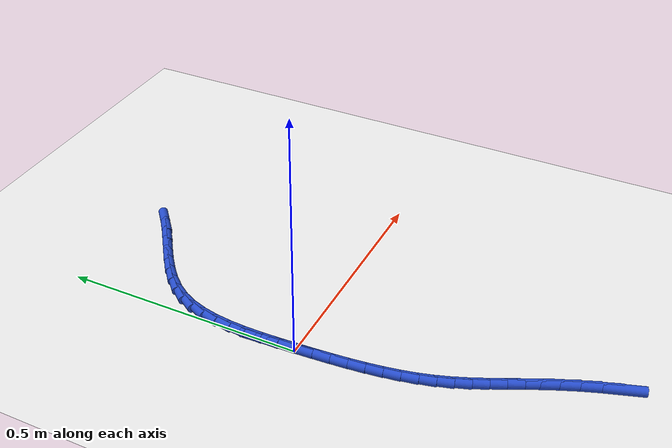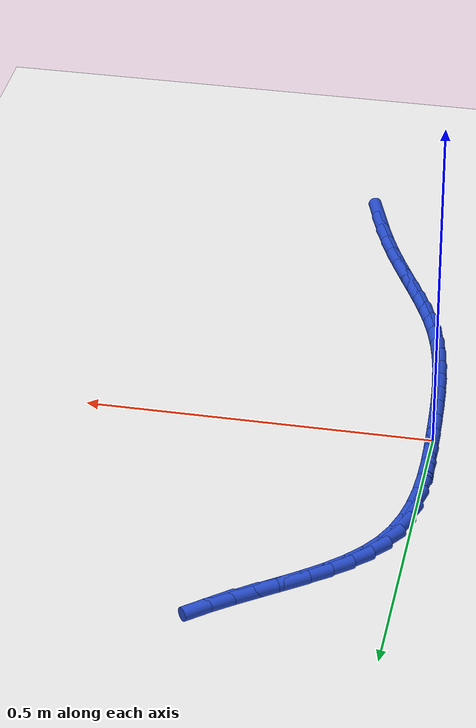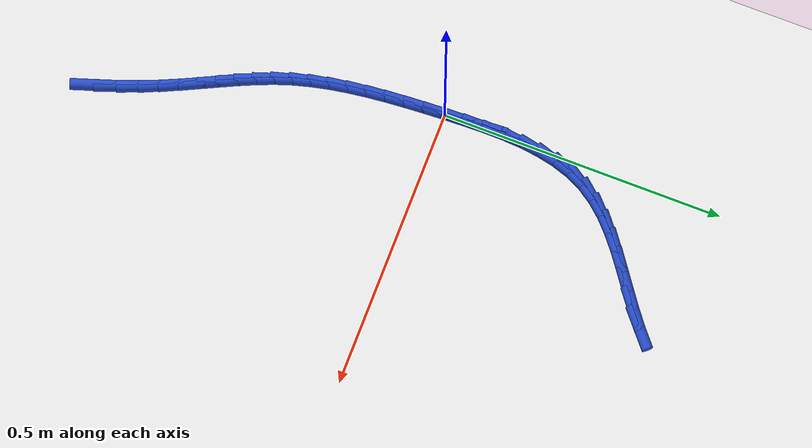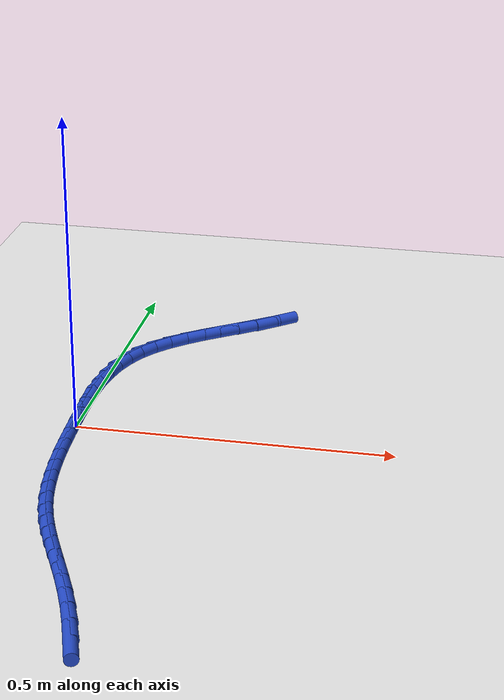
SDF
<sdf version="1.6">
 <world name="default">
  <model name="ground_plane">
   <static>1</static>
   <link name="link">
    <collision name="collision">
     <geometry><plane><normal>0 0 1</normal><size>100 100</size></plane></geometry>
     <surface><friction><ode><mu>100</mu><mu2>50</mu2></ode></friction></surface>
    </collision>
    <visual name="visual">
     <cast_shadows>0</cast_shadows>
     <geometry><plane><normal>0 0 1</normal><size>100 100</size></plane></geometry>
     <material>
      <script><uri>file://media/materials/scripts/gazebo.material</uri><name>Gazebo/WhiteGlow</name></script>
     </material>
    </visual>
   </link>
  </model>
  <model name="line">
   <link name="link_0">
    <pose>6.071532165918825e-18 -2.0816681711721685e-17 0.01 0 1.57 -1.5283965037339577</pose>
    <collision name="collision">
     <geometry><cylinder><radius>0.01</radius><length>0.08</length></cylinder></geometry>
    </collision>
    <visual name="visual">
     <material>
      <script><name>Gazebo/Blue</name><uri>file://media/materials/scripts/gazebo.material</uri></script>
     </material>
     <geometry><cylinder><radius>0.01</radius><length>0.08</length></cylinder></geometry>
    </visual>
   </link>
   <link name="link_1">
    <pose>-0.001498879464508566 0.03532989167594646 0.01 0 1.57 -1.5470402116652142</pose>
    <collision name="collision">
     <geometry><cylinder><radius>0.01</radius><length>0.08</length></cylinder></geometry>
    </collision>
    <visual name="visual">
     <material>
      <script><name>Gazebo/Blue</name><uri>file://media/materials/scripts/gazebo.material</uri></script>
     </material>
     <geometry><cylinder><radius>0.01</radius><length>0.08</length></cylinder></geometry>
    </visual>
   </link>
   <link name="link_2">
    <pose>-0.0023387738931622644 0.07067811335036579 0.01 0 1.57 1.5620465766555596</pose>
    <collision name="collision">
     <geometry><cylinder><radius>0.01</radius><length>0.08</length></cylinder></geometry>
    </collision>
    <visual name="visual">
     <material>
      <script><name>Gazebo/Blue</name><uri>file://media/materials/scripts/gazebo.material</uri></script>
     </material>
     <geometry><cylinder><radius>0.01</radius><length>0.08</length></cylinder></geometry>
    </visual>
   </link>
   <link name="link_3">
    <pose>-0.0020322944470748576 0.10570444210294236 0.01 0 1.57 1.514395082861115</pose>
    <collision name="collision">
     <geometry><cylinder><radius>0.01</radius><length>0.08</length></cylinder></geometry>
    </collision>
    <visual name="visual">
     <material>
      <script><name>Gazebo/Blue</name><uri>file://media/materials/scripts/gazebo.material</uri></script>
     </material>
     <geometry><cylinder><radius>0.01</radius><length>0.08</length></cylinder></geometry>
    </visual>
   </link>
   <link name="link_4">
    <pose>-9.205228736011185e-05 0.14006865501336038 0.01 0 1.57 1.4496548437023833</pose>
    <collision name="collision">
     <geometry><cylinder><radius>0.01</radius><length>0.08</length></cylinder></geometry>
    </collision>
    <visual name="visual">
     <material>
      <script><name>Gazebo/Blue</name><uri>file://media/materials/scripts/gazebo.material</uri></script>
     </material>
     <geometry><cylinder><radius>0.01</radius><length>0.08</length></cylinder></geometry>
    </visual>
   </link>
   <link name="link_5">
    <pose>0.003969341424868209 0.17343052916130416 0.01 0 1.57 1.3654235661168286</pose>
    <collision name="collision">
     <geometry><cylinder><radius>0.01</radius><length>0.08</length></cylinder></geometry>
    </collision>
    <visual name="visual">
     <material>
      <script><name>Gazebo/Blue</name><uri>file://media/materials/scripts/gazebo.material</uri></script>
     </material>
     <geometry><cylinder><radius>0.01</radius><length>0.08</length></cylinder></geometry>
    </visual>
   </link>
   <link name="link_6">
    <pose>0.010639275528496344 0.20544984162645802 0.01 0 1.57 1.259354841588835</pose>
    <collision name="collision">
     <geometry><cylinder><radius>0.01</radius><length>0.08</length></cylinder></geometry>
    </collision>
    <visual name="visual">
     <material>
      <script><name>Gazebo/Blue</name><uri>file://media/materials/scripts/gazebo.material</uri></script>
     </material>
     <geometry><cylinder><radius>0.01</radius><length>0.08</length></cylinder></geometry>
    </visual>
   </link>
   <link name="link_7">
    <pose>0.020405138862410514 0.23578636948850618 0.01 0 1.57 1.130226139631336</pose>
    <collision name="collision">
     <geometry><cylinder><radius>0.01</radius><length>0.08</length></cylinder></geometry>
    </collision>
    <visual name="visual">
     <material>
      <script><name>Gazebo/Blue</name><uri>file://media/materials/scripts/gazebo.material</uri></script>
     </material>
     <geometry><cylinder><radius>0.01</radius><length>0.08</length></cylinder></geometry>
    </visual>
   </link>
   <link name="link_8">
    <pose>0.03375432026549696 0.26409988982713295 0.01 0 1.57 0.9833878627278883</pose>
    <collision name="collision">
     <geometry><cylinder><radius>0.01</radius><length>0.08</length></cylinder></geometry>
    </collision>
    <visual name="visual">
     <material>
      <script><name>Gazebo/Blue</name><uri>file://media/materials/scripts/gazebo.material</uri></script>
     </material>
     <geometry><cylinder><radius>0.01</radius><length>0.08</length></cylinder></geometry>
    </visual>
   </link>
   <link name="link_9">
    <pose>0.051075435489808696 0.290115038766558 0.01 0 1.57 0.852496347622651</pose>
    <collision name="collision">
     <geometry><cylinder><radius>0.01</radius><length>0.08</length></cylinder></geometry>
    </collision>
    <visual name="visual">
     <material>
      <script><name>Gazebo/Blue</name><uri>file://media/materials/scripts/gazebo.material</uri></script>
     </material>
     <geometry><cylinder><radius>0.01</radius><length>0.08</length></cylinder></geometry>
    </visual>
   </link>
   <link name="link_10">
    <pose>0.07199954562878354 0.3140538983741864 0.01 0 1.57 0.7530468306794879</pose>
    <collision name="collision">
     <geometry><cylinder><radius>0.01</radius><length>0.08</length></cylinder></geometry>
    </collision>
    <visual name="visual">
     <material>
      <script><name>Gazebo/Blue</name><uri>file://media/materials/scripts/gazebo.material</uri></script>
     </material>
     <geometry><cylinder><radius>0.01</radius><length>0.08</length></cylinder></geometry>
    </visual>
   </link>
   <link name="link_11">
    <pose>0.09580708123976286 0.3363687911835788 0.01 0 1.57 0.6833430598227593</pose>
    <collision name="collision">
     <geometry><cylinder><radius>0.01</radius><length>0.08</length></cylinder></geometry>
    </collision>
    <visual name="visual">
     <material>
      <script><name>Gazebo/Blue</name><uri>file://media/materials/scripts/gazebo.material</uri></script>
     </material>
     <geometry><cylinder><radius>0.01</radius><length>0.08</length></cylinder></geometry>
    </visual>
   </link>
   <link name="link_12">
    <pose>0.12177656684679818 0.35751329131921045 0.01 0 1.57 0.6404637598815272</pose>
    <collision name="collision">
     <geometry><cylinder><radius>0.01</radius><length>0.08</length></cylinder></geometry>
    </collision>
    <visual name="visual">
     <material>
      <script><name>Gazebo/Blue</name><uri>file://media/materials/scripts/gazebo.material</uri></script>
     </material>
     <geometry><cylinder><radius>0.01</radius><length>0.08</length></cylinder></geometry>
    </visual>
   </link>
   <link name="link_13">
    <pose>0.14918652697394097 0.377940972905556 0.01 0 1.57 0.6219499275188383</pose>
    <collision name="collision">
     <geometry><cylinder><radius>0.01</radius><length>0.08</length></cylinder></geometry>
    </collision>
    <visual name="visual">
     <material>
      <script><name>Gazebo/Blue</name><uri>file://media/materials/scripts/gazebo.material</uri></script>
     </material>
     <geometry><cylinder><radius>0.01</radius><length>0.08</length></cylinder></geometry>
    </visual>
   </link>
   <link name="link_14">
    <pose>0.17731548614524287 0.3981054100670906 0.01 0 1.57 0.6264469530278278</pose>
    <collision name="collision">
     <geometry><cylinder><radius>0.01</radius><length>0.08</length></cylinder></geometry>
    </collision>
    <visual name="visual">
     <material>
      <script><name>Gazebo/Blue</name><uri>file://media/materials/scripts/gazebo.material</uri></script>
     </material>
     <geometry><cylinder><radius>0.01</radius><length>0.08</length></cylinder></geometry>
    </visual>
   </link>
   <link name="link_15">
    <pose>0.20544196888475533 0.418460176928289 0.01 0 1.57 0.6538543119953212</pose>
    <collision name="collision">
     <geometry><cylinder><radius>0.01</radius><length>0.08</length></cylinder></geometry>
    </collision>
    <visual name="visual">
     <material>
      <script><name>Gazebo/Blue</name><uri>file://media/materials/scripts/gazebo.material</uri></script>
     </material>
     <geometry><cylinder><radius>0.01</radius><length>0.08</length></cylinder></geometry>
    </visual>
   </link>
   <link name="link_16">
    <pose>0.2328444997165299 0.4394588476136263 0.01 0 1.57 0.7052229768547227</pose>
    <collision name="collision">
     <geometry><cylinder><radius>0.01</radius><length>0.08</length></cylinder></geometry>
    </collision>
    <visual name="visual">
     <material>
      <script><name>Gazebo/Blue</name><uri>file://media/materials/scripts/gazebo.material</uri></script>
     </material>
     <geometry><cylinder><radius>0.01</radius><length>0.08</length></cylinder></geometry>
    </visual>
   </link>
   <link name="link_212">
    <pose>0.1659851003664079 -0.5793563138743192 0.01 0 1.57 -1.251107564640512</pose>
    <collision name="collision">
     <geometry><cylinder><radius>0.01</radius><length>0.08</length></cylinder></geometry>
    </collision>
    <visual name="visual">
     <material>
      <script><name>Gazebo/Blue</name><uri>file://media/materials/scripts/gazebo.material</uri></script>
     </material>
     <geometry><cylinder><radius>0.01</radius><length>0.08</length></cylinder></geometry>
    </visual>
   </link>
   <link name="link_213">
    <pose>0.1532325118815835 -0.5408339797077314 0.01 0 1.57 -1.2167696545719062</pose>
    <collision name="collision">
     <geometry><cylinder><radius>0.01</radius><length>0.08</length></cylinder></geometry>
    </collision>
    <visual name="visual">
     <material>
      <script><name>Gazebo/Blue</name><uri>file://media/materials/scripts/gazebo.material</uri></script>
     </material>
     <geometry><cylinder><radius>0.01</radius><length>0.08</length></cylinder></geometry>
    </visual>
   </link>
   <link name="link_214">
    <pose>0.1398155312579359 -0.5045324725816485 0.01 0 1.57 -1.1783829703532351</pose>
    <collision name="collision">
     <geometry><cylinder><radius>0.01</radius><length>0.08</length></cylinder></geometry>
    </collision>
    <visual name="visual">
     <material>
      <script><name>Gazebo/Blue</name><uri>file://media/materials/scripts/gazebo.material</uri></script>
     </material>
     <geometry><cylinder><radius>0.01</radius><length>0.08</length></cylinder></geometry>
    </visual>
   </link>
   <link name="link_215">
    <pose>0.12576955368580012 -0.47059505965069925 0.01 0 1.57 -1.1480703014670257</pose>
    <collision name="collision">
     <geometry><cylinder><radius>0.01</radius><length>0.08</length></cylinder></geometry>
    </collision>
    <visual name="visual">
     <material>
      <script><name>Gazebo/Blue</name><uri>file://media/materials/scripts/gazebo.material</uri></script>
     </material>
     <geometry><cylinder><radius>0.01</radius><length>0.08</length></cylinder></geometry>
    </visual>
   </link>
   <link name="link_216">
    <pose>0.1113851063658929 -0.4386186929283487 0.01 0 1.57 -1.1286264456524668</pose>
    <collision name="collision">
     <geometry><cylinder><radius>0.01</radius><length>0.08</length></cylinder></geometry>
    </collision>
    <visual name="visual">
     <material>
      <script><name>Gazebo/Blue</name><uri>file://media/materials/scripts/gazebo.material</uri></script>
     </material>
     <geometry><cylinder><radius>0.01</radius><length>0.08</length></cylinder></geometry>
    </visual>
   </link>
   <link name="link_217">
    <pose>0.09696825885787926 -0.40816704351591143 0.01 0 1.57 -1.12192614018525</pose>
    <collision name="collision">
     <geometry><cylinder><radius>0.01</radius><length>0.08</length></cylinder></geometry>
    </collision>
    <visual name="visual">
     <material>
      <script><name>Gazebo/Blue</name><uri>file://media/materials/scripts/gazebo.material</uri></script>
     </material>
     <geometry><cylinder><radius>0.01</radius><length>0.08</length></cylinder></geometry>
    </visual>
   </link>
   <link name="link_218">
    <pose>0.0828250807214247 -0.3788037825147024 0.01 0 1.57 -1.1294638730562343</pose>
    <collision name="collision">
     <geometry><cylinder><radius>0.01</radius><length>0.08</length></cylinder></geometry>
    </collision>
    <visual name="visual">
     <material>
      <script><name>Gazebo/Blue</name><uri>file://media/materials/scripts/gazebo.material</uri></script>
     </material>
     <geometry><cylinder><radius>0.01</radius><length>0.08</length></cylinder></geometry>
    </visual>
   </link>
   <link name="link_219">
    <pose>0.06926164151619431 -0.35009258102603613 0.01 0 1.57 -1.1521917744882482</pose>
    <collision name="collision">
     <geometry><cylinder><radius>0.01</radius><length>0.08</length></cylinder></geometry>
    </collision>
    <visual name="visual">
     <material>
      <script><name>Gazebo/Blue</name><uri>file://media/materials/scripts/gazebo.material</uri></script>
     </material>
     <geometry><cylinder><radius>0.01</radius><length>0.08</length></cylinder></geometry>
    </visual>
   </link>
   <link name="link_220">
    <pose>0.05658401080185432 -0.32159711015122966 0.01 0 1.57 -1.190310213644289</pose>
    <collision name="collision">
     <geometry><cylinder><radius>0.01</radius><length>0.08</length></cylinder></geometry>
    </collision>
    <visual name="visual">
     <material>
      <script><name>Gazebo/Blue</name><uri>file://media/materials/scripts/gazebo.material</uri></script>
     </material>
     <geometry><cylinder><radius>0.01</radius><length>0.08</length></cylinder></geometry>
    </visual>
   </link>
   <link name="link_221">
    <pose>0.04509825813806978 -0.2928810409915972 0.01 0 1.57 -1.242995389376917</pose>
    <collision name="collision">
     <geometry><cylinder><radius>0.01</radius><length>0.08</length></cylinder></geometry>
    </collision>
    <visual name="visual">
     <material>
      <script><name>Gazebo/Blue</name><uri>file://media/materials/scripts/gazebo.material</uri></script>
     </material>
     <geometry><cylinder><radius>0.01</radius><length>0.08</length></cylinder></geometry>
    </visual>
   </link>
   <link name="link_222">
    <pose>0.03510966948373796 -0.2635088559676257 0.01 0 1.57 -1.3026208247335274</pose>
    <collision name="collision">
     <geometry><cylinder><radius>0.01</radius><length>0.08</length></cylinder></geometry>
    </collision>
    <visual name="visual">
     <material>
      <script><name>Gazebo/Blue</name><uri>file://media/materials/scripts/gazebo.material</uri></script>
     </material>
     <geometry><cylinder><radius>0.01</radius><length>0.08</length></cylinder></geometry>
    </visual>
   </link>
   <link name="link_223">
    <pose>0.026779380976810506 -0.23319428634957584 0.01 0 1.57 -1.3556601569403022</pose>
    <collision name="collision">
     <geometry><cylinder><radius>0.01</radius><length>0.08</length></cylinder></geometry>
    </collision>
    <visual name="visual">
     <material>
      <script><name>Gazebo/Blue</name><uri>file://media/materials/scripts/gazebo.material</uri></script>
     </material>
     <geometry><cylinder><radius>0.01</radius><length>0.08</length></cylinder></geometry>
    </visual>
   </link>
   <link name="link_224">
    <pose>0.019957085919679814 -0.2019735229478805 0.01 0 1.57 -1.4006801351985478</pose>
    <collision name="collision">
     <geometry><cylinder><radius>0.01</radius><length>0.08</length></cylinder></geometry>
    </collision>
    <visual name="visual">
     <material>
      <script><name>Gazebo/Blue</name><uri>file://media/materials/scripts/gazebo.material</uri></script>
     </material>
     <geometry><cylinder><radius>0.01</radius><length>0.08</length></cylinder></geometry>
    </visual>
   </link>
   <link name="link_225">
    <pose>0.014451870419084554 -0.1699248001718045 0.01 0 1.57 -1.4380673511216149</pose>
    <collision name="collision">
     <geometry><cylinder><radius>0.01</radius><length>0.08</length></cylinder></geometry>
    </collision>
    <visual name="visual">
     <material>
      <script><name>Gazebo/Blue</name><uri>file://media/materials/scripts/gazebo.material</uri></script>
     </material>
     <geometry><cylinder><radius>0.01</radius><length>0.08</length></cylinder></geometry>
    </visual>
   </link>
   <link name="link_226">
    <pose>0.010072820581763588 -0.13712635243061314 0.01 0 1.57 -1.4682648641519072</pose>
    <collision name="collision">
     <geometry><cylinder><radius>0.01</radius><length>0.08</length></cylinder></geometry>
    </collision>
    <visual name="visual">
     <material>
      <script><name>Gazebo/Blue</name><uri>file://media/materials/scripts/gazebo.material</uri></script>
     </material>
     <geometry><cylinder><radius>0.01</radius><length>0.08</length></cylinder></geometry>
    </visual>
   </link>
   <link name="link_227">
    <pose>0.006629022514455784 -0.10365641413357167 0.01 0 1.57 -1.4917130153507696</pose>
    <collision name="collision">
     <geometry><cylinder><radius>0.01</radius><length>0.08</length></cylinder></geometry>
    </collision>
    <visual name="visual">
     <material>
      <script><name>Gazebo/Blue</name><uri>file://media/materials/scripts/gazebo.material</uri></script>
     </material>
     <geometry><cylinder><radius>0.01</radius><length>0.08</length></cylinder></geometry>
    </visual>
   </link>
   <link name="link_228">
    <pose>0.003929562323899948 -0.06959321968994465 0.01 0 1.57 -1.5088125869150137</pose>
    <collision name="collision">
     <geometry><cylinder><radius>0.01</radius><length>0.08</length></cylinder></geometry>
    </collision>
    <visual name="visual">
     <material>
      <script><name>Gazebo/Blue</name><uri>file://media/materials/scripts/gazebo.material</uri></script>
     </material>
     <geometry><cylinder><radius>0.01</radius><length>0.08</length></cylinder></geometry>
    </visual>
   </link>
   <link name="link_229">
    <pose>0.0017835261168350877 -0.0350150035089992 0.01 0 1.57 -1.5199042550254334</pose>
    <collision name="collision">
     <geometry><cylinder><radius>0.01</radius><length>0.08</length></cylinder></geometry>
    </collision>
    <visual name="visual">
     <material>
      <script><name>Gazebo/Blue</name><uri>file://media/materials/scripts/gazebo.material</uri></script>
     </material>
     <geometry><cylinder><radius>0.01</radius><length>0.08</length></cylinder></geometry>
    </visual>
   </link>
   <link name="link_230">
    <pose>-5.637851296924623e-18 2.0122792321330962e-16 0.01 0 1.57 -1.5252590458738173</pose>
    <collision name="collision">
     <geometry><cylinder><radius>0.01</radius><length>0.08</length></cylinder></geometry>
    </collision>
    <visual name="visual">
     <material>
      <script><name>Gazebo/Blue</name><uri>file://media/materials/scripts/gazebo.material</uri></script>
     </material>
     <geometry><cylinder><radius>0.01</radius><length>0.08</length></cylinder></geometry>
    </visual>
   </link>
   <link name="link_231">
    <pose>-0.0016119299198664627 0.035373556427788236 0.01 0 1.57 -1.5250758874378363</pose>
    <collision name="collision">
     <geometry><cylinder><radius>0.01</radius><length>0.08</length></cylinder></geometry>
    </collision>
    <visual name="visual">
     <material>
      <script><name>Gazebo/Blue</name><uri>file://media/materials/scripts/gazebo.material</uri></script>
     </material>
     <geometry><cylinder><radius>0.01</radius><length>0.08</length></cylinder></geometry>
    </visual>
   </link>
   <link name="link_232">
    <pose>-0.003243177536025414 0.07102743136509948 0.01 0 1.57 -1.5251671048442204</pose>
    <collision name="collision">
     <geometry><cylinder><radius>0.01</radius><length>0.08</length></cylinder></geometry>
    </collision>
    <visual name="visual">
     <material>
      <script><name>Gazebo/Blue</name><uri>file://media/materials/scripts/gazebo.material</uri></script>
     </material>
     <geometry><cylinder><radius>0.01</radius><length>0.08</length></cylinder></geometry>
    </visual>
   </link>
  </model>
 </world>
</sdf>
